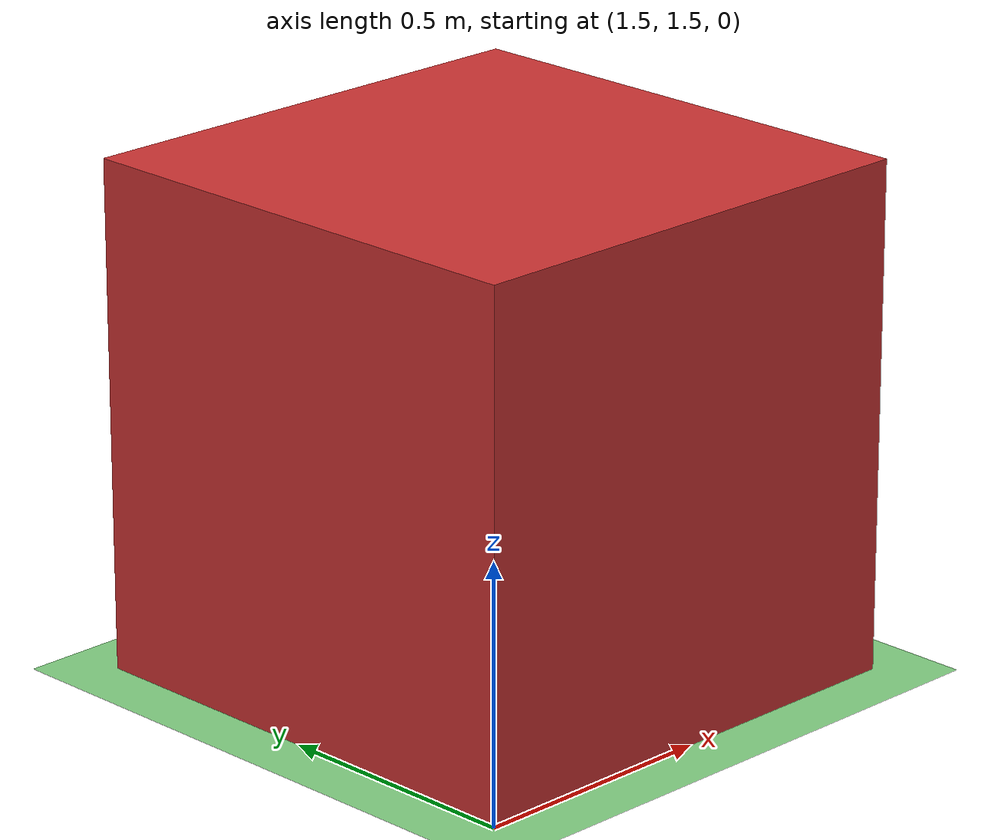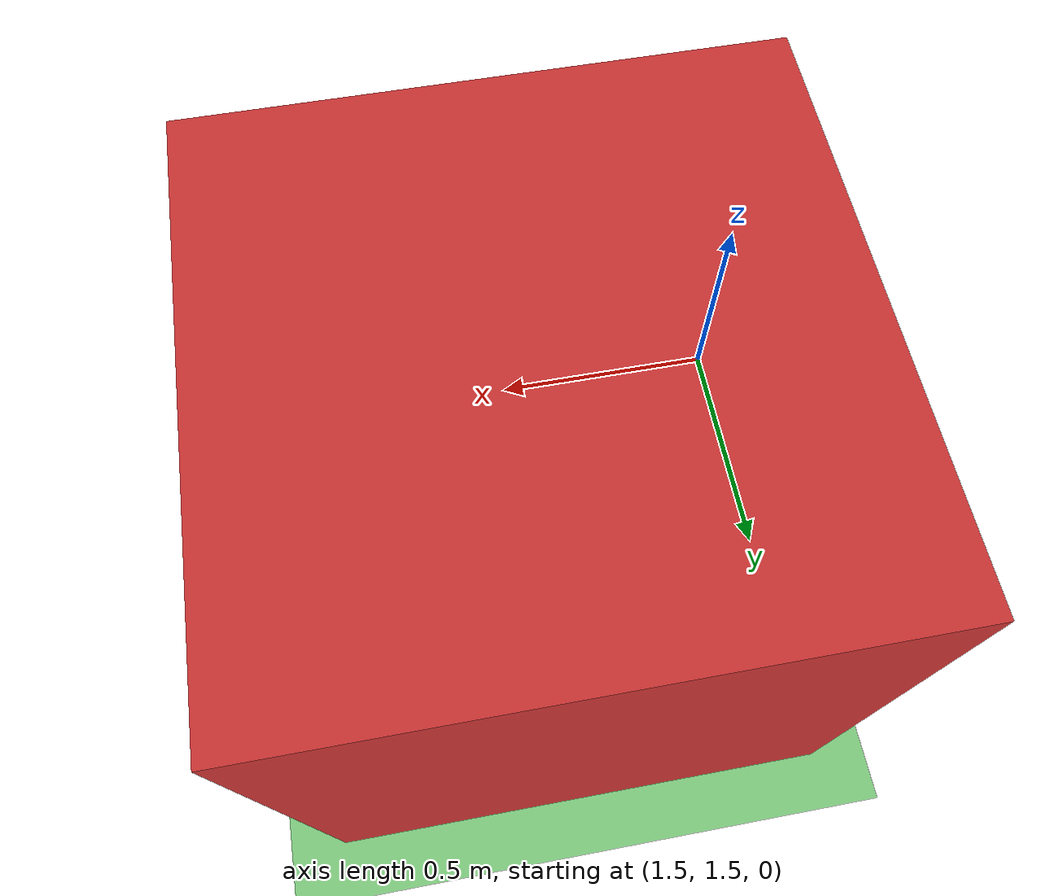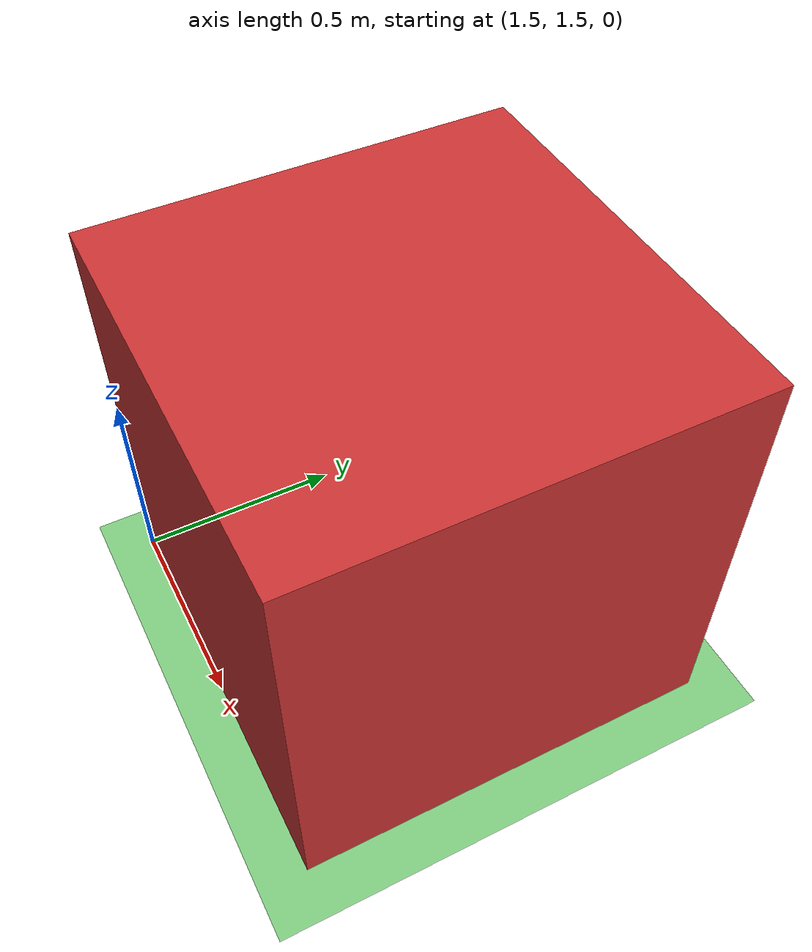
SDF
<?xml version="1.0" encoding="UTF-8"?>
<sdf version="1.9">
  <world name="rover_test">
    <physics type="ode">
      <max_step_size>0.002</max_step_size>
      <real_time_factor>1.0</real_time_factor>
      <real_time_update_rate>500</real_time_update_rate>
    </physics>
    <gravity>0 0 -9.8</gravity>
    <magnetic_field>6e-06 2.3e-05 -4.2e-05</magnetic_field>
    <atmosphere type="adiabatic"/>
    <scene>
      <grid>true</grid>
      <ambient>0.4 0.4 0.4 1</ambient>
      <background>0.7 0.7 0.7 1</background>
      <shadows>true</shadows>
    </scene>

    <!-- Ground Plane -->
    <model name="ground_plane">
      <static>true</static>
      <link name="link">
        <collision name="collision">
          <geometry>
            <plane>
              <normal>0 0 1</normal>
              <size>400 400</size>
            </plane>
          </geometry>
          <surface>
            <friction>
              <ode>
                <mu>2</mu>
                <mu2>2</mu2>
              </ode>
            </friction>
          </surface>
        </collision>
        <visual name="visual">
          <geometry>
            <plane>
              <normal>0 0 1</normal>
              <size>400 400</size>
            </plane>
          </geometry>
          <material>
            <diffuse>0.5 0.8 0.5 1</diffuse>
          </material>
        </visual>
      </link>
    </model>

    <!-- Simple cube for testing -->
    <model name="test_cube">
      <pose>2 2 0.5 0 0 0</pose>
      <link name="link">
        <collision name="collision">
          <geometry>
            <box>
              <size>1 1 1</size>
            </box>
          </geometry>
        </collision>
        <visual name="visual">
          <geometry>
            <box>
              <size>1 1 1</size>
            </box>
          </geometry>
          <material>
            <diffuse>0.8 0.2 0.2 1</diffuse>
          </material>
        </visual>
        <inertial>
          <mass>1</mass>
          <inertia>
            <ixx>0.1</ixx>
            <iyy>0.1</iyy>
            <izz>0.1</izz>
            <ixy>0</ixy>
            <ixz>0</ixz>
            <iyz>0</iyz>
          </inertia>
        </inertial>
      </link>
    </model>

    <!-- Directional Sun Light -->
    <light name="sun" type="directional">
      <cast_shadows>true</cast_shadows>
      <pose>0 0 500 0 -0 0</pose>
      <diffuse>0.9 0.9 0.9 1</diffuse>
      <specular>0.2 0.2 0.2 1</specular>
      <direction>0.5 0.5 -1</direction>
    </light>

    <!-- Point Light -->
    <light name="point_light" type="point">
      <pose>3 3 5 0 0 0</pose>
      <diffuse>1 1 0.8 1</diffuse>
      <specular>0.5 0.5 0.5 1</specular>
      <attenuation>
        <range>10</range>
        <constant>0.5</constant>
        <linear>0.01</linear>
        <quadratic>0.001</quadratic>
      </attenuation>
    </light>

    <spherical_coordinates>
      <surface_model>EARTH_WGS84</surface_model>
      <world_frame_orientation>ENU</world_frame_orientation>
      <latitude_deg>47.397971057728974</latitude_deg>
      <longitude_deg>8.546163739800146</longitude_deg>
      <elevation>0</elevation>
    </spherical_coordinates>
  </world>
</sdf>
